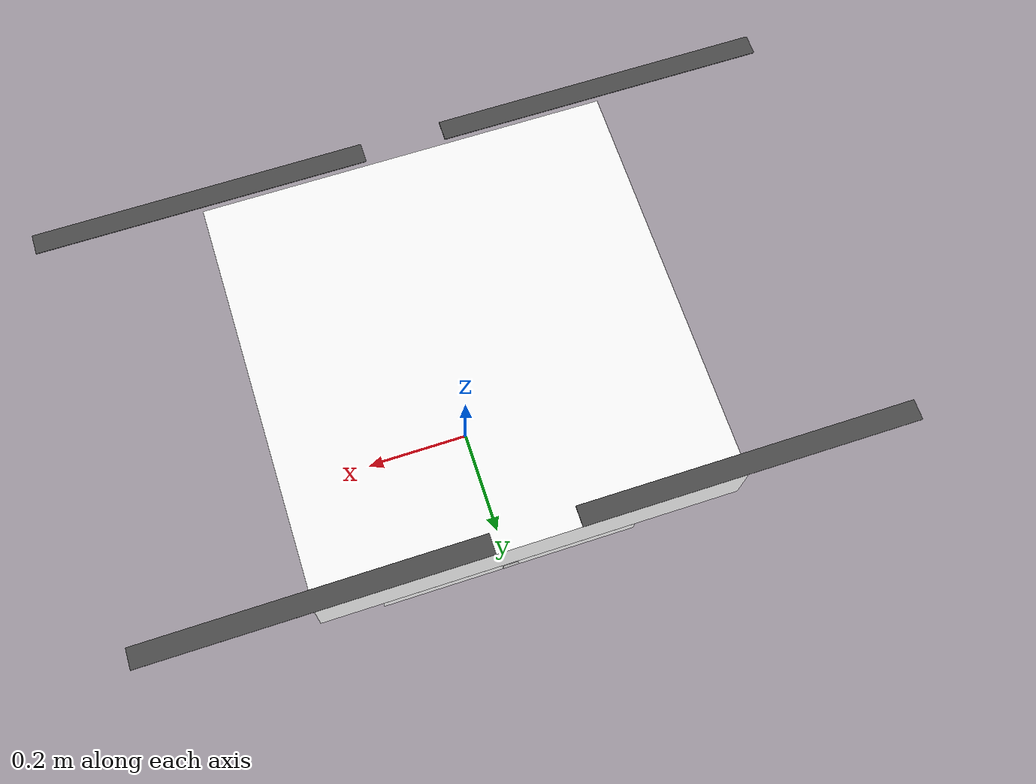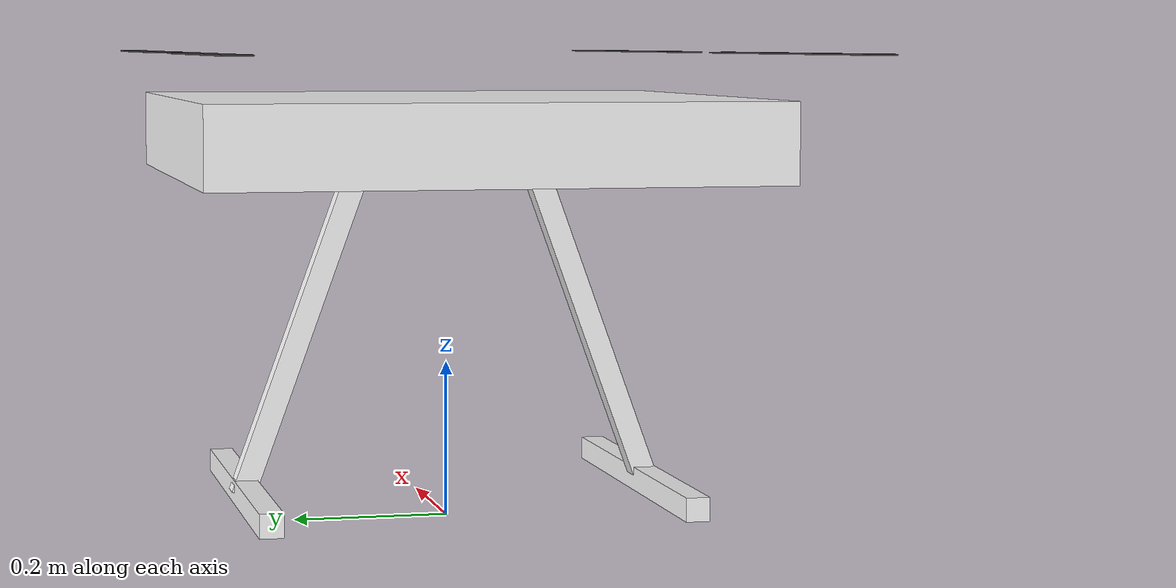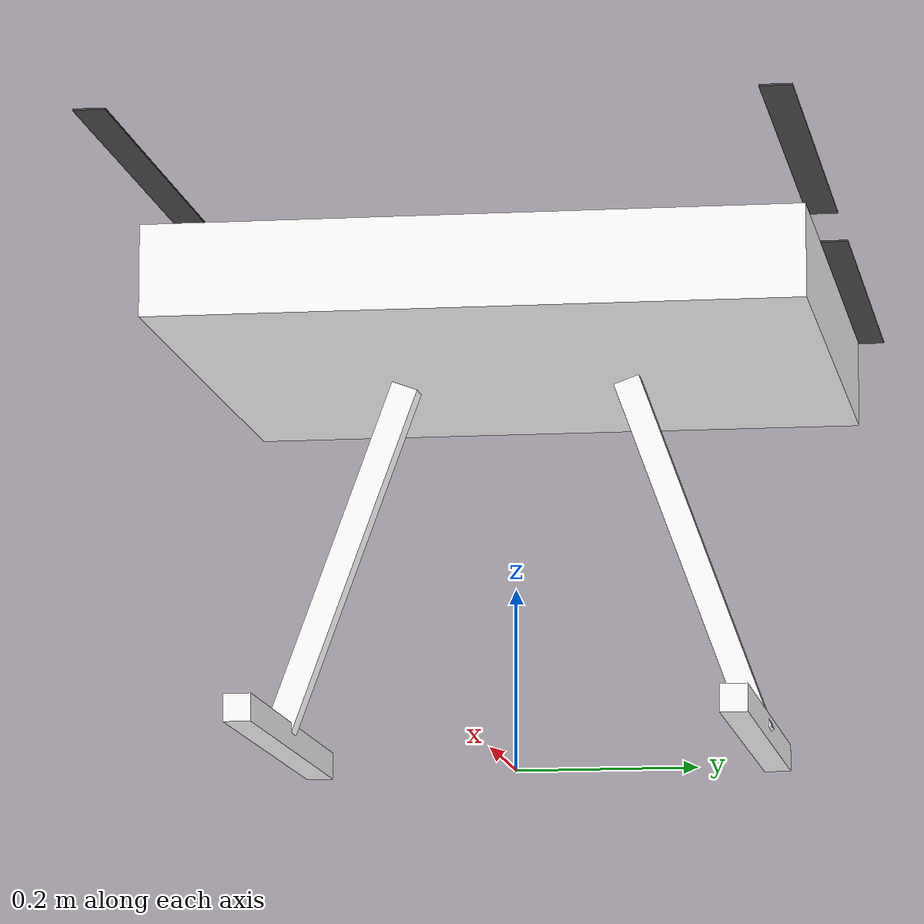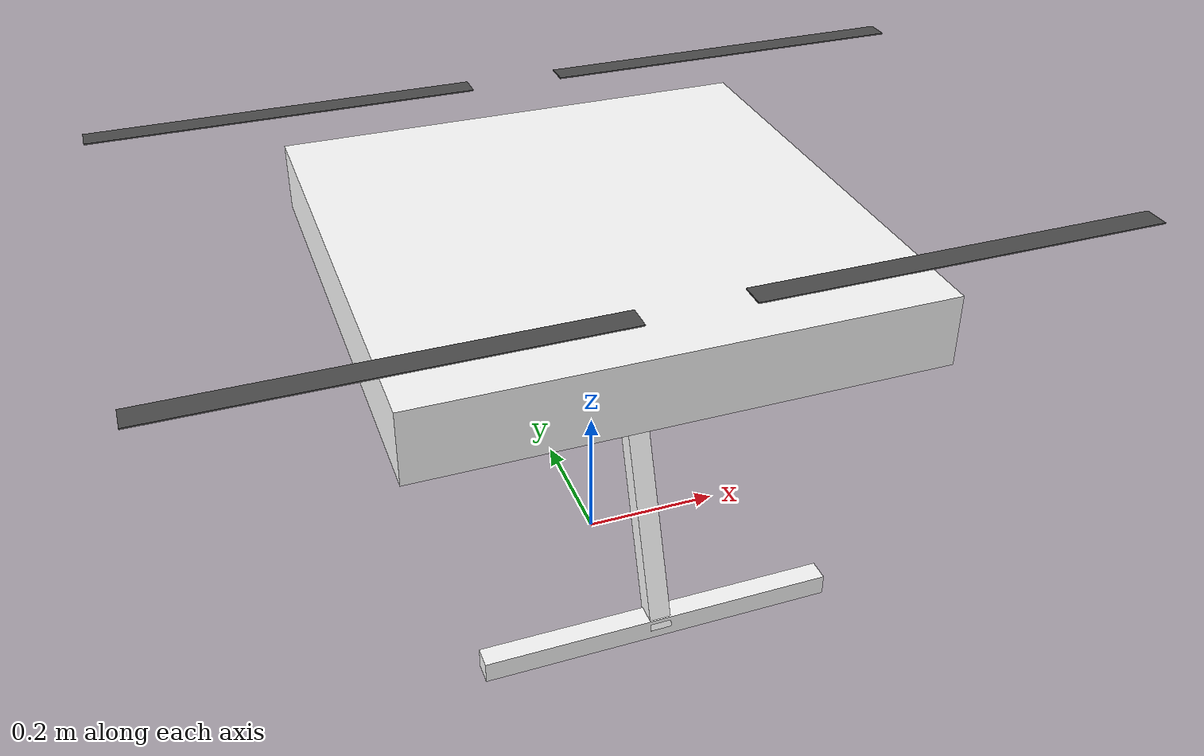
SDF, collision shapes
<?xml version="1.0" encoding="UTF-8"?>
<sdf version='1.9'>
  <model name='altaxv2'>
    <include merge='true'>
      <uri>model://x500_base</uri>
    </include>

    <!-- Second GPS sensor on a separate link attached to base -->
    <link name="gps_1_link">
      <pose>0 0 0.05 0 0 0</pose>
      <inertial>
        <mass>0.001</mass>
        <inertia>
          <ixx>0.000001</ixx>
          <ixy>0</ixy>
          <ixz>0</ixz>
          <iyy>0.000001</iyy>
          <iyz>0</iyz>
          <izz>0.000001</izz>
        </inertia>
      </inertial>
      <sensor name="navsat_sensor_1" type="navsat">
        <always_on>1</always_on>
        <update_rate>30</update_rate>
      </sensor>
    </link>
    <joint name="gps_1_joint" type="fixed">
      <parent>base_link</parent>
      <child>gps_1_link</child>
    </joint>

    <plugin filename="gz-sim-multicopter-motor-model-system" name="gz::sim::systems::MulticopterMotorModel">
      <jointName>rotor_0_joint</jointName>
      <linkName>rotor_0</linkName>
      <turningDirection>ccw</turningDirection>
      <timeConstantUp>0.0125</timeConstantUp>
      <timeConstantDown>0.025</timeConstantDown>
      <maxRotVelocity>1000.0</maxRotVelocity>
      <motorConstant>8.54858e-06</motorConstant>
      <momentConstant>0.016</momentConstant>
      <commandSubTopic>command/motor_speed</commandSubTopic>
      <motorNumber>0</motorNumber>
      <rotorDragCoefficient>8.06428e-05</rotorDragCoefficient>
      <rollingMomentCoefficient>1e-06</rollingMomentCoefficient>
      <rotorVelocitySlowdownSim>10</rotorVelocitySlowdownSim>
      <motorType>velocity</motorType>
    </plugin>
    <plugin filename="gz-sim-multicopter-motor-model-system" name="gz::sim::systems::MulticopterMotorModel">
      <jointName>rotor_1_joint</jointName>
      <linkName>rotor_1</linkName>
      <turningDirection>ccw</turningDirection>
      <timeConstantUp>0.0125</timeConstantUp>
      <timeConstantDown>0.025</timeConstantDown>
      <maxRotVelocity>1000.0</maxRotVelocity>
      <motorConstant>8.54858e-06</motorConstant>
      <momentConstant>0.016</momentConstant>
      <commandSubTopic>command/motor_speed</commandSubTopic>
      <motorNumber>1</motorNumber>
      <rotorDragCoefficient>8.06428e-05</rotorDragCoefficient>
      <rollingMomentCoefficient>1e-06</rollingMomentCoefficient>
      <rotorVelocitySlowdownSim>10</rotorVelocitySlowdownSim>
      <motorType>velocity</motorType>
    </plugin>
    <plugin filename="gz-sim-multicopter-motor-model-system" name="gz::sim::systems::MulticopterMotorModel">
      <jointName>rotor_2_joint</jointName>
      <linkName>rotor_2</linkName>
      <turningDirection>cw</turningDirection>
      <timeConstantUp>0.0125</timeConstantUp>
      <timeConstantDown>0.025</timeConstantDown>
      <maxRotVelocity>1000.0</maxRotVelocity>
      <motorConstant>8.54858e-06</motorConstant>
      <momentConstant>0.016</momentConstant>
      <commandSubTopic>command/motor_speed</commandSubTopic>
      <motorNumber>2</motorNumber>
      <rotorDragCoefficient>8.06428e-05</rotorDragCoefficient>
      <rollingMomentCoefficient>1e-06</rollingMomentCoefficient>
      <rotorVelocitySlowdownSim>10</rotorVelocitySlowdownSim>
      <motorType>velocity</motorType>
    </plugin>
    <plugin filename="gz-sim-multicopter-motor-model-system" name="gz::sim::systems::MulticopterMotorModel">
      <jointName>rotor_3_joint</jointName>
      <linkName>rotor_3</linkName>
      <turningDirection>cw</turningDirection>
      <timeConstantUp>0.0125</timeConstantUp>
      <timeConstantDown>0.025</timeConstantDown>
      <maxRotVelocity>1000.0</maxRotVelocity>
      <motorConstant>8.54858e-06</motorConstant>
      <momentConstant>0.016</momentConstant>
      <commandSubTopic>command/motor_speed</commandSubTopic>
      <motorNumber>3</motorNumber>
      <rotorDragCoefficient>8.06428e-05</rotorDragCoefficient>
      <rollingMomentCoefficient>1e-06</rollingMomentCoefficient>
      <rotorVelocitySlowdownSim>10</rotorVelocitySlowdownSim>
      <motorType>velocity</motorType>
    </plugin>
  </model>
</sdf>

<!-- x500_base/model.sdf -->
<sdf version='1.9'>
  <model name='x500_base'>
    <pose>0 0 .48 0 0 0</pose>
    <self_collide>false</self_collide>
    <static>false</static>
    <link name="base_link">
      <inertial>
        <mass>25.0</mass>
        <inertia>
          <ixx>0.6933333333333333</ixx>
          <ixy>0</ixy>
          <ixz>0</ixz>
          <iyy>0.6933333333333333</iyy>
          <iyz>0</iyz>
          <izz>1.28</izz>
        </inertia>
      </inertial>
      <gravity>true</gravity>
      <velocity_decay />
      <visual name="base_link_visual">
        <pose>0 0 .05 0 0 3.141592654</pose>
        <geometry>
          <mesh>
            <scale>2 2 2</scale>
            <uri>model://x500_base/meshes/NXP-HGD-CF.dae</uri>
          </mesh>
        </geometry>
      </visual>
      <visual name="5010_motor_base_0">
        <pose>0.348 0.348 .064 0 0 -.45</pose>
        <geometry>
          <mesh>
            <scale>2 2 2</scale>
            <uri>model://x500_base/meshes/5010Base.dae</uri>
          </mesh>
        </geometry>
      </visual>
      <visual name="5010_motor_base_1">
        <pose>-0.348 0.348 .064 0 0 -.45</pose>
        <geometry>
          <mesh>
            <scale>2 2 2</scale>
            <uri>model://x500_base/meshes/5010Base.dae</uri>
          </mesh>
        </geometry>
      </visual>
      <visual name="5010_motor_base_2">
        <pose>0.348 -0.348 .064 0 0 -.45</pose>
        <geometry>
          <mesh>
            <scale>2 2 2</scale>
            <uri>model://x500_base/meshes/5010Base.dae</uri>
          </mesh>
        </geometry>
      </visual>
      <visual name="5010_motor_base_3">
        <pose>-0.348 -0.348 .064 0 0 -.45</pose>
        <geometry>
          <mesh>
            <scale>2 2 2</scale>
            <uri>model://x500_base/meshes/5010Base.dae</uri>
          </mesh>
        </geometry>
      </visual>
      <visual name="NXP_FMUK66_FRONT">
        <pose>0.094 .002 .086 1 0 1.57</pose>
        <cast_shadows>false</cast_shadows>
        <geometry>
          <plane>
            <normal>0 0 1</normal>
            <size>.026 .014</size>
          </plane>
        </geometry>
        <material>
          <diffuse>1.0 1.0 1.0</diffuse>
          <specular>1.0 1.0 1.0</specular>
          <pbr>
            <metal>
              <albedo_map>model://x500_base/materials/textures/nxp.png</albedo_map>
            </metal>
          </pbr>
        </material>
      </visual>
      <visual name="NXP_FMUK66_TOP">
        <pose>-0.046 0 .103 0 0 -1.57</pose>
        <cast_shadows>false</cast_shadows>
        <geometry>
          <plane>
            <normal>0 0 1</normal>
            <size>.026 .014</size>
          </plane>
        </geometry>
        <material>
          <diffuse>1.0 1.0 1.0</diffuse>
          <specular>1.0 1.0 1.0</specular>
          <pbr>
            <metal>
              <albedo_map>model://x500_base/materials/textures/nxp.png</albedo_map>
            </metal>
          </pbr>
        </material>
      </visual>
      <visual name="RDDRONE_FMUK66_TOP">
        <pose>-.06 0 .103 0 0 -1.57</pose>
        <cast_shadows>false</cast_shadows>
        <geometry>
          <plane>
            <normal>0 0 1</normal>
            <size>.064 .0068</size>
          </plane>
        </geometry>
        <material>
          <diffuse>1.0 1.0 1.0</diffuse>
          <specular>1.0 1.0 1.0</specular>
          <pbr>
            <metal>
              <albedo_map>model://x500_base/materials/textures/rd.png</albedo_map>
            </metal>
          </pbr>
        </material>
      </visual>
      <collision name="base_link_collision_0">
        <pose>0 0 .014 0 0 0</pose>
        <geometry>
          <box>
            <size>0.70710678118654746 0.70710678118654746 0.1</size>
          </box>
        </geometry>
        <surface>
          <contact>
            <ode>
              <min_depth>0.001</min_depth>
              <max_vel>0</max_vel>
            </ode>
          </contact>
          <friction>
            <ode />
          </friction>
        </surface>
      </collision>
      <collision name="base_link_collision_1">
        <pose>0 -0.196 -.246 -0.35 0 0</pose>
        <geometry>
          <box>
            <size>0.03 0.03 0.42</size>
          </box>
        </geometry>
        <surface>
          <contact>
            <ode>
              <min_depth>0.001</min_depth>
              <max_vel>0</max_vel>
            </ode>
          </contact>
          <friction>
            <ode />
          </friction>
        </surface>
      </collision>
      <collision name="base_link_collision_2">
        <pose>0 0.196 -.246 0.35 0 0</pose>
        <geometry>
          <box>
            <size>0.03 0.03 0.42</size>
          </box>
        </geometry>
        <surface>
          <contact>
            <ode>
              <min_depth>0.001</min_depth>
              <max_vel>0</max_vel>
            </ode>
          </contact>
          <friction>
            <ode />
          </friction>
        </surface>
      </collision>
      <collision name="base_link_collision_3">
        <pose>0 -0.264 -.439 0 0 0</pose>
        <geometry>
          <box>
            <size>0.5 0.03 0.03</size>
          </box>
        </geometry>
        <surface>
          <contact>
            <ode>
              <min_depth>0.001</min_depth>
              <max_vel>0</max_vel>
            </ode>
          </contact>
          <friction>
            <ode />
          </friction>
        </surface>
      </collision>
      <collision name="base_link_collision_4">
        <pose>0 0.264 -.439 0 0 0</pose>
        <geometry>
          <box>
            <size>0.5 0.03 0.03</size>
          </box>
        </geometry>
        <surface>
          <contact>
            <ode>
              <min_depth>0.001</min_depth>
              <max_vel>0</max_vel>
            </ode>
          </contact>
          <friction>
            <ode />
          </friction>
        </surface>
      </collision>
      <sensor name="air_pressure_sensor" type="air_pressure">
        <gz_frame_id>base_link</gz_frame_id>
        <always_on>1</always_on>
        <update_rate>50</update_rate>
        <air_pressure>
          <!-- Noise modeled after BMP390 -->
          <pressure>
            <noise type="gaussian">
              <mean>0</mean>
              <stddev>3</stddev>
            </noise>
          </pressure>
        </air_pressure>
      </sensor>
      <sensor name="magnetometer_sensor" type="magnetometer">
        <gz_frame_id>base_link</gz_frame_id>
        <always_on>1</always_on>
        <update_rate>100</update_rate>
        <magnetometer>
          <!-- TODO: update to fix units and coordinate system when we move past Harmonic -->
          <!-- See https://github.com/gazebosim/gz-sim/pull/2460 -->
          <!-- 3mgauss RMS: NOTE: noise is in tesla but sensor reports data in gauss -->
          <!-- Noise modeled after IIS2MDC -->
          <x>
            <noise type="gaussian">
              <stddev>0.0001</stddev>
            </noise>
          </x>
          <y>
            <noise type="gaussian">
              <stddev>0.0001</stddev>
            </noise>
          </y>
          <z>
            <noise type="gaussian">
              <stddev>0.0001</stddev>
            </noise>
          </z>
        </magnetometer>
      </sensor>
      <sensor name="imu_sensor" type="imu">
        <gz_frame_id>base_link</gz_frame_id>
        <always_on>1</always_on>
        <update_rate>250</update_rate>
        <imu>
          <angular_velocity>
            <!-- Noise modeled after IIM42653 -->
            <!-- 0.05 deg/s converted to rad/s -->
            <x>
              <noise type="gaussian">
                <mean>0.0</mean>
                <stddev>0.0008726646</stddev>
              </noise>
            </x>
            <y>
              <noise type="gaussian">
                <mean>0.0</mean>
                <stddev>0.0008726646</stddev>
              </noise>
            </y>
            <z>
              <noise type="gaussian">
                <mean>0.0</mean>
                <stddev>0.0008726646</stddev>
              </noise>
            </z>
          </angular_velocity>
          <linear_acceleration>
            <!-- Noise modeled after IIM42653 -->
            <!-- X & Y axis: 0.65 mg-rms converted to m/ss -->
            <x>
              <noise type="gaussian">
                <mean>0.0</mean>
                <stddev>0.00637</stddev>
              </noise>
            </x>
            <y>
              <noise type="gaussian">
                <mean>0.0</mean>
                <stddev>0.00637</stddev>
              </noise>
            </y>
            <!-- Z axis: 0.70 mg-rms converted to m/ss-->
            <z>
              <noise type="gaussian">
                <mean>0.0</mean>
                <stddev>0.00686</stddev>
              </noise>
            </z>
          </linear_acceleration>
        </imu>
      </sensor>
      <sensor name="navsat_sensor" type="navsat">
        <gz_frame_id>base_link</gz_frame_id>
        <always_on>1</always_on>
        <update_rate>30</update_rate>
      </sensor>
    </link>
    <link name="rotor_0">
      <gravity>true</gravity>
      <self_collide>false</self_collide>
      <velocity_decay/>
      <pose>0.348 -0.348 0.12 0 0 0</pose>
      <inertial>
          <mass>0.128615384615384</mass>
          <inertia>
            <ixx>1.2308771354877864e-05</ixx>
            <iyy>8.3570725413442574e-04</iyy>
            <izz>8.4795463510848128e-04</izz>
          </inertia>
        </inertial>
      <visual name="rotor_0_visual">
        <pose>-0.044 -0.29276923076923072 -0.032 0 0 0</pose>
        <geometry>
          <mesh>
            <scale>1.6923076923076922 1.6923076923076922 1.6923076923076922</scale>
            <uri>model://x500_base/meshes/1345_prop_ccw.stl</uri>
          </mesh>
        </geometry>
        <material>
          <script>
            <name>Gazebo/DarkGrey</name>
            <uri>file://media/materials/scripts/gazebo.material</uri>
          </script>
        </material>
      </visual>
      <visual name="rotor_0_visual_motor_bell">
        <pose>0 0 -.064 0 0 0</pose>
        <geometry>
          <mesh>
            <scale>2 2 2</scale>
            <uri>model://x500_base/meshes/5010Bell.dae</uri>
          </mesh>
        </geometry>
      </visual>
      <collision name="rotor_0_collision">
        <pose>0 0 0 0 0 0 </pose>
        <geometry>
          <box>
            <size>0.5584615384615384 0.033846153846153846 0.0016923076923076924</size>
          </box>
        </geometry>
        <surface>
          <contact>
            <ode>
              <min_depth>0.001</min_depth>
              <max_vel>0</max_vel>
            </ode>
          </contact>
          <friction>
            <ode />
          </friction>
        </surface>
      </collision>
    </link>
    <joint name="rotor_0_joint" type="revolute">
      <parent>base_link</parent>
      <child>rotor_0</child>
      <axis>
        <xyz>0 0 1</xyz>
        <limit>
          <lower>-1e+16</lower>
          <upper>1e+16</upper>
        </limit>
        <dynamics>
          <spring_reference>0</spring_reference>
          <spring_stiffness>0</spring_stiffness>
        </dynamics>
      </axis>
    </joint>
    <link name="rotor_1">
      <gravity>true</gravity>
      <self_collide>false</self_collide>
      <velocity_decay/>
      <pose>-0.348 0.348 0.12 0 0 0</pose>
      <inertial>
          <mass>0.128615384615384</mass>
          <inertia>
            <ixx>1.2308771354877864e-05</ixx>
            <iyy>8.3570725413442574e-04</iyy>
            <izz>8.4795463510848128e-04</izz>
          </inertia>
        </inertial>
      <visual name="rotor_1_visual">
        <pose>-0.044 -0.29276923076923072 -0.032 0 0 0</pose>
        <geometry>
          <mesh>
            <scale>1.6923076923076922 1.6923076923076922 1.6923076923076922</scale>
            <uri>model://x500_base/meshes/1345_prop_ccw.stl</uri>
          </mesh>
        </geometry>
        <material>
          <script>
            <name>Gazebo/DarkGrey</name>
            <uri>file://media/materials/scripts/gazebo.material</uri>
          </script>
        </material>
      </visual>
      <visual name="rotor_1_visual_motor_top">
        <pose>0 0 -.064 0 0 0</pose>
        <geometry>
          <mesh>
            <scale>2 2 2</scale>
            <uri>model://x500_base/meshes/5010Bell.dae</uri>
          </mesh>
        </geometry>
      </visual>
      <collision name="rotor_1_collision">
        <pose>0 0 0 0 0 0 </pose>
        <geometry>
          <box>
            <size>0.5584615384615384 0.033846153846153846 0.0016923076923076924</size>
          </box>
        </geometry>
        <surface>
          <contact>
            <ode>
              <min_depth>0.001</min_depth>
              <max_vel>0</max_vel>
            </ode>
          </contact>
          <friction>
            <ode />
          </friction>
        </surface>
      </collision>
    </link>
    <joint name="rotor_1_joint" type="revolute">
      <parent>base_link</parent>
      <child>rotor_1</child>
      <axis>
        <xyz>0 0 1</xyz>
        <limit>
          <lower>-1e+16</lower>
          <upper>1e+16</upper>
        </limit>
        <dynamics>
          <spring_reference>0</spring_reference>
          <spring_stiffness>0</spring_stiffness>
        </dynamics>
      </axis>
    </joint>
    <link name="rotor_2">
      <gravity>true</gravity>
      <self_collide>false</self_collide>
      <velocity_decay/>
      <pose>0.348 0.348 0.12 0 0 0</pose>
      <inertial>
          <mass>0.128615384615384</mass>
          <inertia>
            <ixx>1.2308771354877864e-05</ixx>
            <iyy>8.3570725413442574e-04</iyy>
            <izz>8.4795463510848128e-04</izz>
          </inertia>
        </inertial>
      <visual name="rotor_2_visual">
        <pose>-0.044 -0.29276923076923072 -0.032 0 0 0</pose>
        <geometry>
          <mesh>
            <scale>1.6923076923076922 1.6923076923076922 1.6923076923076922</scale>
            <uri>model://x500_base/meshes/1345_prop_cw.stl</uri>
          </mesh>
        </geometry>
        <material>
          <script>
            <name>Gazebo/DarkGrey</name>
            <uri>file://media/materials/scripts/gazebo.material</uri>
          </script>
        </material>
      </visual>
      <visual name="rotor_2_visual_motor_top">
        <pose>0 0 -.064 0 0 0</pose>
        <geometry>
          <mesh>
            <scale>2 2 2</scale>
            <uri>model://x500_base/meshes/5010Bell.dae</uri>
          </mesh>
        </geometry>
      </visual>
      <collision name="rotor_2_collision">
        <pose>0 0 0 0 0 0 </pose>
        <geometry>
          <box>
            <size>0.5584615384615384 0.033846153846153846 0.0016923076923076924</size>
          </box>
        </geometry>
        <surface>
          <contact>
            <ode>
              <min_depth>0.001</min_depth>
              <max_vel>0</max_vel>
            </ode>
          </contact>
          <friction>
            <ode />
          </friction>
        </surface>
      </collision>
    </link>
    <joint name="rotor_2_joint" type="revolute">
      <parent>base_link</parent>
      <child>rotor_2</child>
      <axis>
        <xyz>0 0 1</xyz>
        <limit>
          <lower>-1e+16</lower>
          <upper>1e+16</upper>
        </limit>
        <dynamics>
          <spring_reference>0</spring_reference>
          <spring_stiffness>0</spring_stiffness>
        </dynamics>
      </axis>
    </joint>
    <link name="rotor_3">
      <gravity>true</gravity>
      <self_collide>false</self_collide>
      <velocity_decay/>
      <pose>-0.348 -0.348 0.12 0 0 0</pose>
      <inertial>
          <mass>0.128615384615384</mass>
          <inertia>
            <ixx>1.2308771354877864e-05</ixx>
            <iyy>8.3570725413442574e-04</iyy>
            <izz>8.4795463510848128e-04</izz>
          </inertia>
        </inertial>
      <visual name="rotor_3_visual">
        <pose>-0.044 -0.29276923076923072 -0.032 0 0 0</pose>
        <geometry>
          <mesh>
            <scale>1.6923076923076922 1.6923076923076922 1.6923076923076922</scale>
            <uri>model://x500_base/meshes/1345_prop_cw.stl</uri>
          </mesh>
        </geometry>
        <material>
          <script>
            <name>Gazebo/DarkGrey</name>
            <uri>file://media/materials/scripts/gazebo.material</uri>
          </script>
        </material>
      </visual>
      <visual name="rotor_3_visual_motor_top">
        <pose>0 0 -.064 0 0 0</pose>
        <geometry>
          <mesh>
            <scale>2 2 2</scale>
            <uri>model://x500_base/meshes/5010Bell.dae</uri>
          </mesh>
        </geometry>
      </visual>
      <collision name="rotor_3_collision">
        <pose>0 0 0 0 0 0 </pose>
        <geometry>
          <box>
            <size>0.5584615384615384 0.033846153846153846 0.0016923076923076924</size>
          </box>
        </geometry>
        <surface>
          <contact>
            <ode>
              <min_depth>0.001</min_depth>
              <max_vel>0</max_vel>
            </ode>
          </contact>
          <friction>
            <ode />
          </friction>
        </surface>
      </collision>
    </link>
    <joint name="rotor_3_joint" type="revolute">
      <parent>base_link</parent>
      <child>rotor_3</child>
      <axis>
        <xyz>0 0 1</xyz>
        <limit>
          <lower>-1e+16</lower>
          <upper>1e+16</upper>
        </limit>
        <dynamics>
          <spring_reference>0</spring_reference>
          <spring_stiffness>0</spring_stiffness>
        </dynamics>
      </axis>
    </joint>
  </model>
</sdf>
